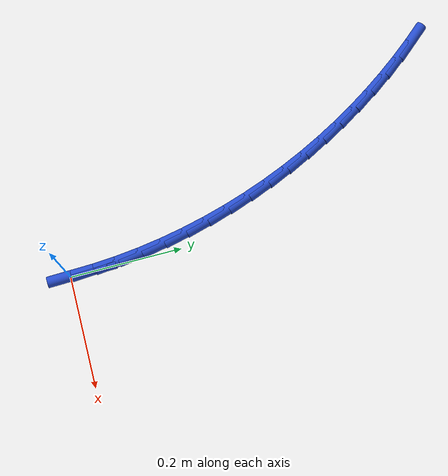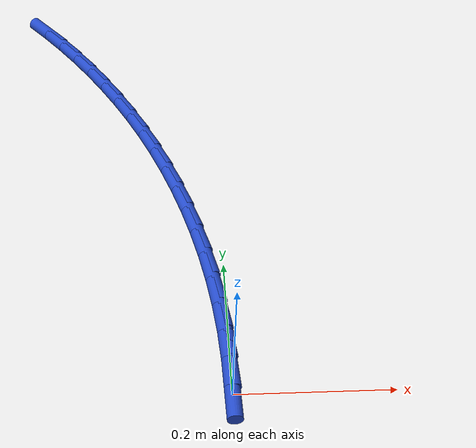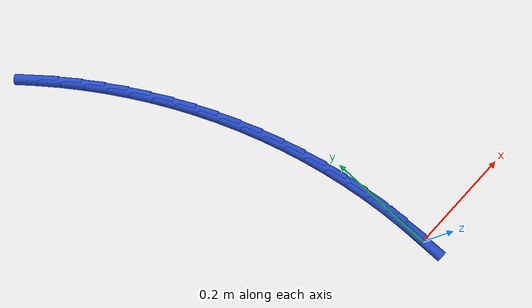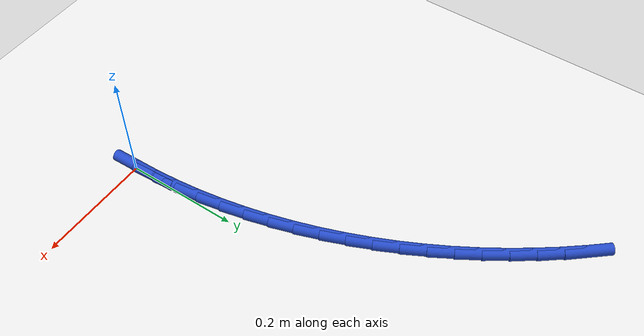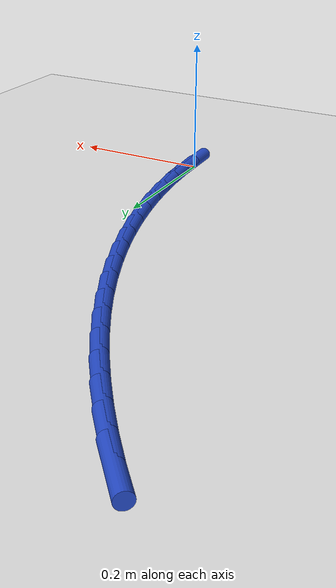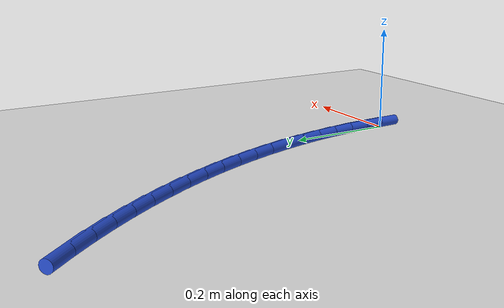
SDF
<sdf version="1.6">
 <world name="default">
  <model name="ground_plane">
   <static>1</static>
   <link name="link">
    <collision name="collision">
     <geometry><plane><normal>0 0 1</normal><size>100 100</size></plane></geometry>
     <surface><friction><ode><mu>100</mu><mu2>50</mu2></ode></friction></surface>
    </collision>
    <visual name="visual">
     <cast_shadows>0</cast_shadows>
     <geometry><plane><normal>0 0 1</normal><size>100 100</size></plane></geometry>
     <material>
      <script><uri>file://media/materials/scripts/gazebo.material</uri><name>Gazebo/WhiteGlow</name></script>
     </material>
    </visual>
   </link>
  </model>
  <model name="line">
   <link name="link_0">
    <pose>-1.5612511283791264e-17 -1.3877787807814457e-17 0.01 0 1.57 -1.54260077349949</pose>
    <collision name="collision">
     <geometry><cylinder><radius>0.01</radius><length>0.08</length></cylinder></geometry>
    </collision>
    <visual name="visual">
     <material>
      <script><name>Gazebo/Blue</name><uri>file://media/materials/scripts/gazebo.material</uri></script>
     </material>
     <geometry><cylinder><radius>0.01</radius><length>0.08</length></cylinder></geometry>
    </visual>
   </link>
   <link name="link_1">
    <pose>-0.0012090307983180961 0.04286883040929545 0.01 0 1.57 -1.499397885782941</pose>
    <collision name="collision">
     <geometry><cylinder><radius>0.01</radius><length>0.08</length></cylinder></geometry>
    </collision>
    <visual name="visual">
     <material>
      <script><name>Gazebo/Blue</name><uri>file://media/materials/scripts/gazebo.material</uri></script>
     </material>
     <geometry><cylinder><radius>0.01</radius><length>0.08</length></cylinder></geometry>
    </visual>
   </link>
   <link name="link_2">
    <pose>-0.004267867004953753 0.08563778560639608 0.01 0 1.57 -1.4571062664524819</pose>
    <collision name="collision">
     <geometry><cylinder><radius>0.01</radius><length>0.08</length></cylinder></geometry>
    </collision>
    <visual name="visual">
     <material>
      <script><name>Gazebo/Blue</name><uri>file://media/materials/scripts/gazebo.material</uri></script>
     </material>
     <geometry><cylinder><radius>0.01</radius><length>0.08</length></cylinder></geometry>
    </visual>
   </link>
   <link name="link_3">
    <pose>-0.009132403668698925 0.12824098085870977 0.01 0 1.57 -1.4156710939081507</pose>
    <collision name="collision">
     <geometry><cylinder><radius>0.01</radius><length>0.08</length></cylinder></geometry>
    </collision>
    <visual name="visual">
     <material>
      <script><name>Gazebo/Blue</name><uri>file://media/materials/scripts/gazebo.material</uri></script>
     </material>
     <geometry><cylinder><radius>0.01</radius><length>0.08</length></cylinder></geometry>
    </visual>
   </link>
   <link name="link_4">
    <pose>-0.01575853583834551 0.17061253143364433 0.01 0 1.57 -1.3750280412431315</pose>
    <collision name="collision">
     <geometry><cylinder><radius>0.01</radius><length>0.08</length></cylinder></geometry>
    </collision>
    <visual name="visual">
     <material>
      <script><name>Gazebo/Blue</name><uri>file://media/materials/scripts/gazebo.material</uri></script>
     </material>
     <geometry><cylinder><radius>0.01</radius><length>0.08</length></cylinder></geometry>
    </visual>
   </link>
   <link name="link_5">
    <pose>-0.024102158562685445 0.21268655259860744 0.01 0 1.57 -1.335104849690482</pose>
    <collision name="collision">
     <geometry><cylinder><radius>0.01</radius><length>0.08</length></cylinder></geometry>
    </collision>
    <visual name="visual">
     <material>
      <script><name>Gazebo/Blue</name><uri>file://media/materials/scripts/gazebo.material</uri></script>
     </material>
     <geometry><cylinder><radius>0.01</radius><length>0.08</length></cylinder></geometry>
    </visual>
   </link>
   <link name="link_6">
    <pose>-0.034119166890510665 0.25439715962100706 0.01 0 1.57 -1.2958226904419372</pose>
    <collision name="collision">
     <geometry><cylinder><radius>0.01</radius><length>0.08</length></cylinder></geometry>
    </collision>
    <visual name="visual">
     <material>
      <script><name>Gazebo/Blue</name><uri>file://media/materials/scripts/gazebo.material</uri></script>
     </material>
     <geometry><cylinder><radius>0.01</radius><length>0.08</length></cylinder></geometry>
    </visual>
   </link>
   <link name="link_7">
    <pose>-0.04576545587061305 0.2956784677682508 0.01 0 1.57 -1.25709731164531</pose>
    <collision name="collision">
     <geometry><cylinder><radius>0.01</radius><length>0.08</length></cylinder></geometry>
    </collision>
    <visual name="visual">
     <material>
      <script><name>Gazebo/Blue</name><uri>file://media/materials/scripts/gazebo.material</uri></script>
     </material>
     <geometry><cylinder><radius>0.01</radius><length>0.08</length></cylinder></geometry>
    </visual>
   </link>
   <link name="link_8">
    <pose>-0.05899692055178456 0.3364645923077466 0.01 0 1.57 -1.2188399790968345</pose>
    <collision name="collision">
     <geometry><cylinder><radius>0.01</radius><length>0.08</length></cylinder></geometry>
    </collision>
    <visual name="visual">
     <material>
      <script><name>Gazebo/Blue</name><uri>file://media/materials/scripts/gazebo.material</uri></script>
     </material>
     <geometry><cylinder><radius>0.01</radius><length>0.08</length></cylinder></geometry>
    </visual>
   </link>
   <link name="link_9">
    <pose>-0.07376945598281709 0.3766896485069023 0.01 0 1.57 -1.1809654141339536</pose>
    <collision name="collision">
     <geometry><cylinder><radius>0.01</radius><length>0.08</length></cylinder></geometry>
    </collision>
    <visual name="visual">
     <material>
      <script><name>Gazebo/Blue</name><uri>file://media/materials/scripts/gazebo.material</uri></script>
     </material>
     <geometry><cylinder><radius>0.01</radius><length>0.08</length></cylinder></geometry>
    </visual>
   </link>
   <link name="link_10">
    <pose>-0.09004017008140396 0.4162915132583234 0.01 0 1.57 -1.1434556414480332</pose>
    <collision name="collision">
     <geometry><cylinder><radius>0.01</radius><length>0.08</length></cylinder></geometry>
    </collision>
    <visual name="visual">
     <material>
      <script><name>Gazebo/Blue</name><uri>file://media/materials/scripts/gazebo.material</uri></script>
     </material>
     <geometry><cylinder><radius>0.01</radius><length>0.08</length></cylinder></geometry>
    </visual>
   </link>
   <link name="link_11">
    <pose>-0.10777383144625427 0.45523182250285976 0.01 0 1.57 -1.106322074995886</pose>
    <collision name="collision">
     <geometry><cylinder><radius>0.01</radius><length>0.08</length></cylinder></geometry>
    </collision>
    <visual name="visual">
     <material>
      <script><name>Gazebo/Blue</name><uri>file://media/materials/scripts/gazebo.material</uri></script>
     </material>
     <geometry><cylinder><radius>0.01</radius><length>0.08</length></cylinder></geometry>
    </visual>
   </link>
   <link name="link_12">
    <pose>-0.12693819126342254 0.49348146246034896 0.01 0 1.57 -1.0695628093231606</pose>
    <collision name="collision">
     <geometry><cylinder><radius>0.01</radius><length>0.08</length></cylinder></geometry>
    </collision>
    <visual name="visual">
     <material>
      <script><name>Gazebo/Blue</name><uri>file://media/materials/scripts/gazebo.material</uri></script>
     </material>
     <geometry><cylinder><radius>0.01</radius><length>0.08</length></cylinder></geometry>
    </visual>
   </link>
   <link name="link_13">
    <pose>-0.14750100743375746 0.5310113401760771 0.01 0 1.57 -1.0331719222769677</pose>
    <collision name="collision">
     <geometry><cylinder><radius>0.01</radius><length>0.08</length></cylinder></geometry>
    </collision>
    <visual name="visual">
     <material>
      <script><name>Gazebo/Blue</name><uri>file://media/materials/scripts/gazebo.material</uri></script>
     </material>
     <geometry><cylinder><radius>0.01</radius><length>0.08</length></cylinder></geometry>
    </visual>
   </link>
   <link name="link_14">
    <pose>-0.16943003785810798 0.5677923626953311 0.01 0 1.57 -0.9971398947715384</pose>
    <collision name="collision">
     <geometry><cylinder><radius>0.01</radius><length>0.08</length></cylinder></geometry>
    </collision>
    <visual name="visual">
     <material>
      <script><name>Gazebo/Blue</name><uri>file://media/materials/scripts/gazebo.material</uri></script>
     </material>
     <geometry><cylinder><radius>0.01</radius><length>0.08</length></cylinder></geometry>
    </visual>
   </link>
   <link name="link_15">
    <pose>-0.19269304043732285 0.6037954370633972 0.01 0 1.57 -0.9614539993555775</pose>
    <collision name="collision">
     <geometry><cylinder><radius>0.01</radius><length>0.08</length></cylinder></geometry>
    </collision>
    <visual name="visual">
     <material>
      <script><name>Gazebo/Blue</name><uri>file://media/materials/scripts/gazebo.material</uri></script>
     </material>
     <geometry><cylinder><radius>0.01</radius><length>0.08</length></cylinder></geometry>
    </visual>
   </link>
   <link name="link_16">
    <pose>-0.21725777307225103 0.6389914703255625 0.01 0 1.57 -0.9260986890348469</pose>
    <collision name="collision">
     <geometry><cylinder><radius>0.01</radius><length>0.08</length></cylinder></geometry>
    </collision>
    <visual name="visual">
     <material>
      <script><name>Gazebo/Blue</name><uri>file://media/materials/scripts/gazebo.material</uri></script>
     </material>
     <geometry><cylinder><radius>0.01</radius><length>0.08</length></cylinder></geometry>
    </visual>
   </link>
   <link name="link_17">
    <pose>-0.2430919936637413 0.673351369527113 0.01 0 1.57 -0.891055979728214</pose>
    <collision name="collision">
     <geometry><cylinder><radius>0.01</radius><length>0.08</length></cylinder></geometry>
    </collision>
    <visual name="visual">
     <material>
      <script><name>Gazebo/Blue</name><uri>file://media/materials/scripts/gazebo.material</uri></script>
     </material>
     <geometry><cylinder><radius>0.01</radius><length>0.08</length></cylinder></geometry>
    </visual>
   </link>
   <link name="link_18">
    <pose>-0.27016346011264236 0.7068460417133355 0.01 0 1.57 -0.8563058213647105</pose>
    <collision name="collision">
     <geometry><cylinder><radius>0.01</radius><length>0.08</length></cylinder></geometry>
    </collision>
    <visual name="visual">
     <material>
      <script><name>Gazebo/Blue</name><uri>file://media/materials/scripts/gazebo.material</uri></script>
     </material>
     <geometry><cylinder><radius>0.01</radius><length>0.08</length></cylinder></geometry>
    </visual>
   </link>
   <link name="link_161">
    <pose>-0.0012172967121789786 0.042865115730097186 0.01 0 1.57 -1.542405650263561</pose>
    <collision name="collision">
     <geometry><cylinder><radius>0.01</radius><length>0.08</length></cylinder></geometry>
    </collision>
    <visual name="visual">
     <material>
      <script><name>Gazebo/Blue</name><uri>file://media/materials/scripts/gazebo.material</uri></script>
     </material>
     <geometry><cylinder><radius>0.01</radius><length>0.08</length></cylinder></geometry>
    </visual>
   </link>
  </model>
 </world>
</sdf>
